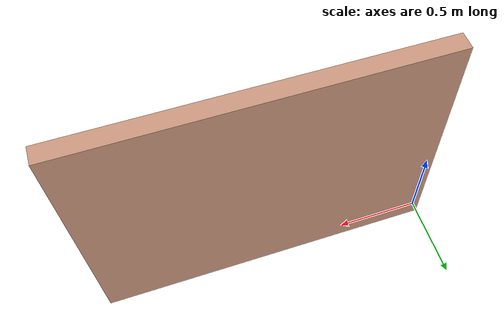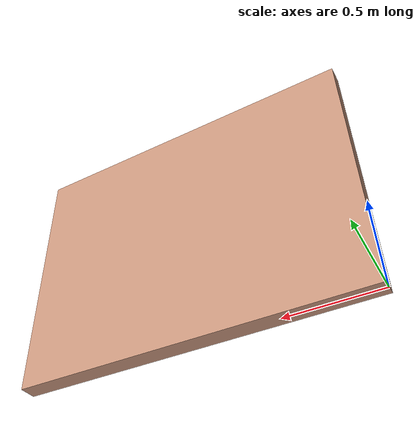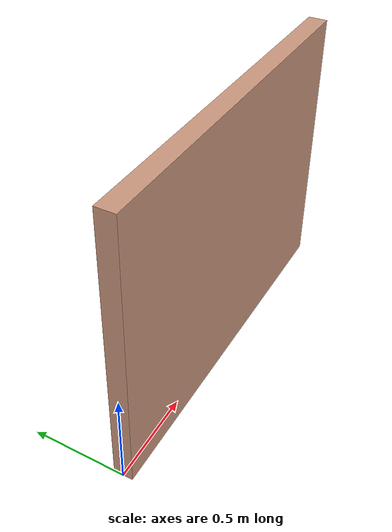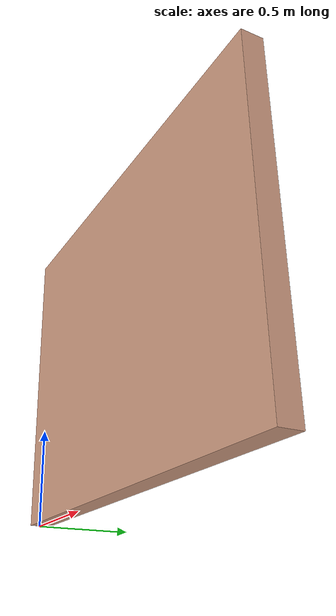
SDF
<?xml version="1.0"?>
<sdf version="1.6">
  <model name="wall">
    <static>true</static>
    <link name="wall_link">
      <collision name="wall_collision">
        <geometry>
          <box>
            <size>2.0 0.1 1.5</size>
          </box>
        </geometry>
        <pose>1.0 0 0.75 0 0 0</pose>
      </collision>
      <visual name="wall_visual">
        <geometry>
          <box>
            <size>2.0 0.1 1.5</size>
          </box>
        </geometry>
        <pose>1.0 0 0.75 0 0 0</pose>
        <material>
          <ambient>0.6 0.4 0.3 1</ambient>
          <diffuse>0.8 0.6 0.5 1</diffuse>
          <specular>0.1 0.1 0.1 1</specular>
        </material>
      </visual>
    </link>
  </model>
</sdf>
